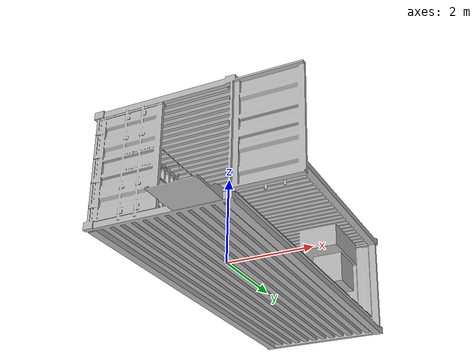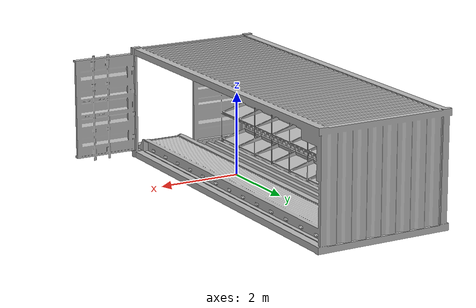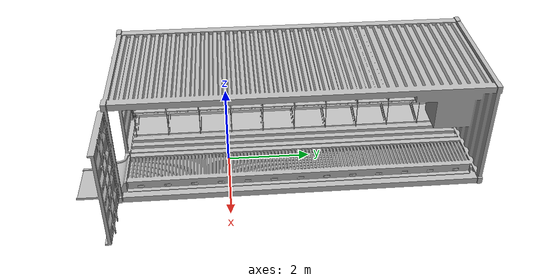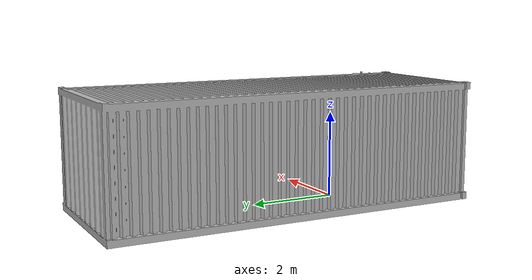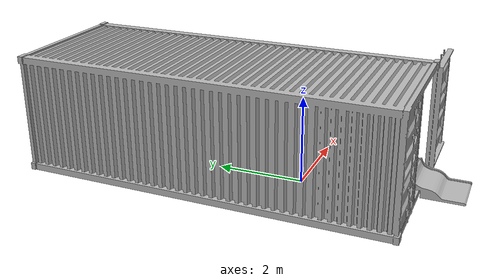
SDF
<?xml version="1.0" ?>
<sdf version="1.6">
  <model name="shipping_container">
    <static>true</static>
    <link name="link">
      <collision name="collision_belt_side_front">
        <pose>1.191 1.6275 0.32 0 0 0</pose>
        <max_contacts>10</max_contacts>
        <geometry>
          <box>
            <size>0.137 7.98 0.3</size>
          </box>
        </geometry>
      </collision>

      <collision name="collision_belt_side_back">
        <pose>0.267 1.6275 0.32 0 0 0</pose>
        <max_contacts>10</max_contacts>
        <geometry>
          <box>
            <size>0.137 7.98 0.3</size>
          </box>
        </geometry>
      </collision>

      <collision name="collision_floor">
        <pose>-0.18 1.715 0.1 0 0 0</pose>
        <max_contacts>10</max_contacts>
        <geometry>
          <box>
            <size>3.25 8.61 0.13</size>
          </box>
        </geometry>
      </collision>

      <collision name="collision_roof">
        <pose>-0.18 1.715 2.65 0 0 0</pose>
        <max_contacts>10</max_contacts>
        <geometry>
          <box>
            <size>3.25 8.61 0.1</size>
          </box>
        </geometry>
      </collision>

      <visual name="visual">
        <geometry>
          <mesh>
            <scale>1.3 0.7 1.0</scale>
            <uri>model://shipping_container/meshes/ShippingContainer_Textured.obj</uri>
          </mesh>
        </geometry>
      </visual>
    </link>
  </model>
</sdf>
